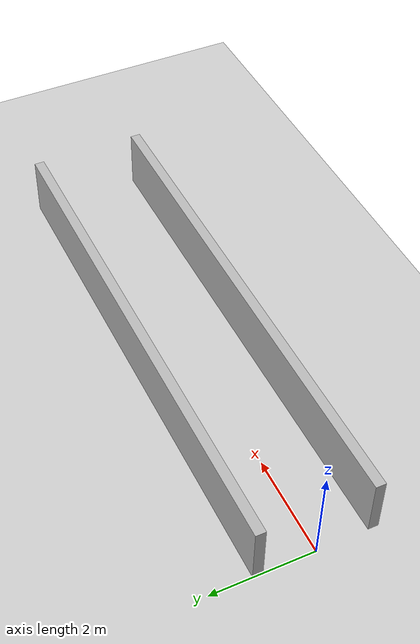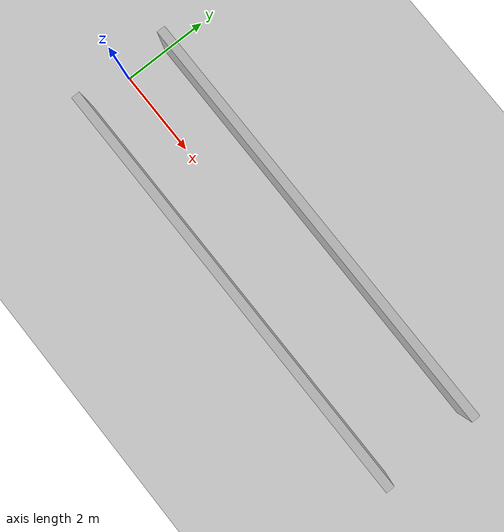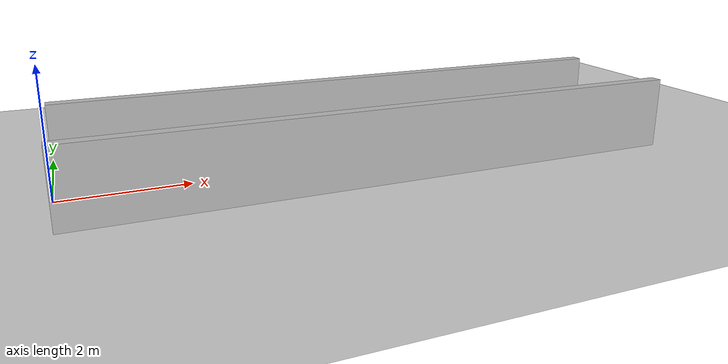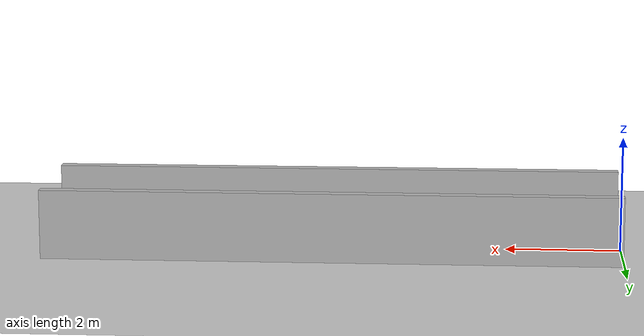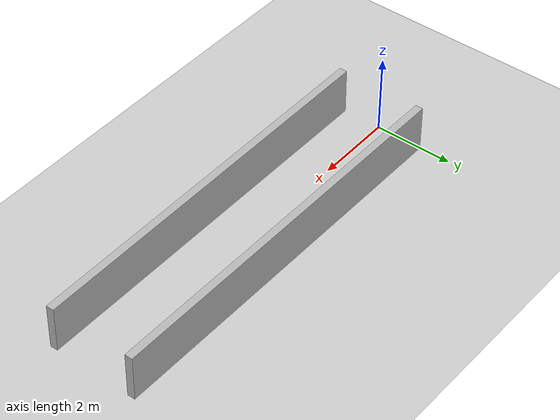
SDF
<?xml version="1.0"?>
<sdf version="1.6">
  <world name="v2-04g-r6-i5-compile-support-corridor-s5166">
    <gravity>0 0 -9.81</gravity>
    <physics name="v2_deterministic" type="ode">
      <max_step_size>0.002</max_step_size>
      <real_time_update_rate>500</real_time_update_rate>
    </physics>
    <include>
      <uri>model://sun</uri>
    </include>
    <include>
      <uri>model://ground_plane</uri>
    </include>
    <model name="corridor-left">
      <static>true</static>
      <pose>5.013045816 1.087330101 0.600000000 0 0 -0.000463473</pose>
      <link name="link">
        <collision name="collision">
          <geometry>
            <box>
              <size>10.000000 0.200000 1.200000</size>
            </box>
          </geometry>
        </collision>
        <visual name="visual">
          <geometry>
            <box>
              <size>10.000000 0.200000 1.200000</size>
            </box>
          </geometry>
        </visual>
      </link>
    </model>
    <model name="corridor-right">
      <static>true</static>
      <pose>5.009373747 -1.085343540 0.600000000 0 0 0.001903931</pose>
      <link name="link">
        <collision name="collision">
          <geometry>
            <box>
              <size>10.000000 0.200000 1.200000</size>
            </box>
          </geometry>
        </collision>
        <visual name="visual">
          <geometry>
            <box>
              <size>10.000000 0.200000 1.200000</size>
            </box>
          </geometry>
        </visual>
      </link>
    </model>
  </world>
</sdf>
